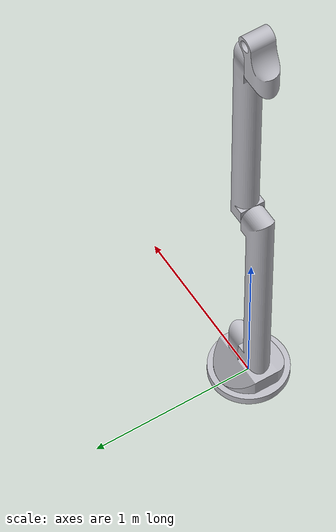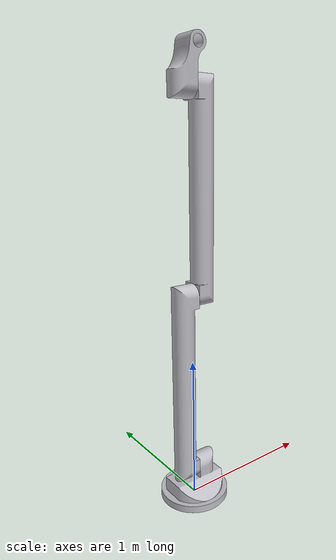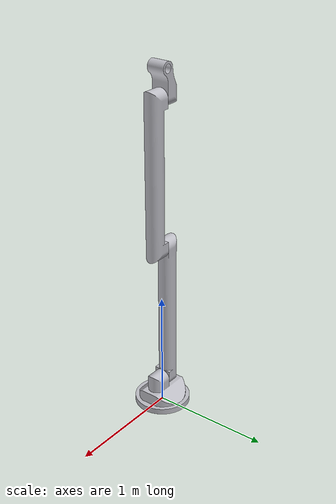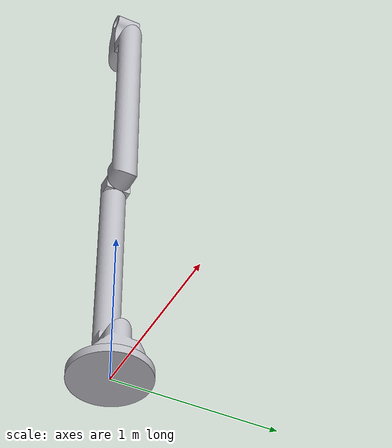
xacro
<?xml version="1.0" ?>
<robot name="e3d_bot" xmlns:xacro="http://www.ros.org/wiki/xacro">

<xacro:include filename="$(find e3d_bot_description)/urdf/e3d_bot.trans" />
<xacro:include filename="$(find e3d_bot_description)/urdf/e3d_bot.gazebo" />
<link name="base_link">
  <inertial>
    <origin xyz="1.0065046946341601e-16 3.355015648780533e-17 0.025000000000000005" rpy="0 0 0"/>
    <mass value="68.09657331058979"/>
    <inertia ixx="0.954345" iyy="0.954345" izz="1.880317" ixy="0.0" iyz="0.0" ixz="0.0"/>
  </inertial>
  <visual>
    <origin xyz="0 0 0" rpy="0 0 0"/>
    <geometry>
      <mesh filename="file://$(find e3d_bot_description)/meshes/base_link.stl" scale="0.001 0.001 0.001"/>
    </geometry>
  </visual>
  <collision>
    <origin xyz="0 0 0" rpy="0 0 0"/>
    <geometry>
      <mesh filename="file://$(find e3d_bot_description)/meshes/base_link.stl" scale="0.001 0.001 0.001"/>
    </geometry>
  </collision>
</link>

<link name="turnTable_1">
  <inertial>
    <origin xyz="0.015394292608733942 -6.217248937900877e-17 0.07182246463634923" rpy="0 0 0"/>
    <mass value="95.92340611318656"/>
    <inertia ixx="0.876124" iyy="1.240281" izz="1.409951" ixy="-0.0" iyz="-0.0" ixz="-0.144355"/>
  </inertial>
  <visual>
    <origin xyz="-0.0 -0.0 -0.05" rpy="0 0 0"/>
    <geometry>
      <mesh filename="file://$(find e3d_bot_description)/meshes/turnTable_1.stl" scale="0.001 0.001 0.001"/>
    </geometry>
  </visual>
  <collision>
    <origin xyz="-0.0 -0.0 -0.05" rpy="0 0 0"/>
    <geometry>
      <mesh filename="file://$(find e3d_bot_description)/meshes/turnTable_1.stl" scale="0.001 0.001 0.001"/>
    </geometry>
  </collision>
</link>

<link name="l1_1">
  <inertial>
    <origin xyz="-0.0736539542138444 1.5987211554602254e-16 0.6249999999999996" rpy="0 0 0"/>
    <mass value="195.479313262593"/>
    <inertia ixx="32.16085" iyy="32.168685" izz="0.565071" ixy="-0.0" iyz="-0.0" ixz="0.0"/>
  </inertial>
  <visual>
    <origin xyz="-0.0 0.0 -0.225" rpy="0 0 0"/>
    <geometry>
      <mesh filename="file://$(find e3d_bot_description)/meshes/l1_1.stl" scale="0.001 0.001 0.001"/>
    </geometry>
  </visual>
  <collision>
    <origin xyz="-0.0 0.0 -0.225" rpy="0 0 0"/>
    <geometry>
      <mesh filename="file://$(find e3d_bot_description)/meshes/l1_1.stl" scale="0.001 0.001 0.001"/>
    </geometry>
  </collision>
</link>

<link name="l2_1">
  <inertial>
    <origin xyz="0.0736539542138442 5.062616992290713e-16 0.6250000000000009" rpy="0 0 0"/>
    <mass value="195.47931326259283"/>
    <inertia ixx="32.16085" iyy="32.168685" izz="0.565071" ixy="-0.0" iyz="-0.0" ixz="0.0"/>
  </inertial>
  <visual>
    <origin xyz="0.0 -0.0 -1.475" rpy="0 0 0"/>
    <geometry>
      <mesh filename="file://$(find e3d_bot_description)/meshes/l2_1.stl" scale="0.001 0.001 0.001"/>
    </geometry>
  </visual>
  <collision>
    <origin xyz="0.0 -0.0 -1.475" rpy="0 0 0"/>
    <geometry>
      <mesh filename="file://$(find e3d_bot_description)/meshes/l2_1.stl" scale="0.001 0.001 0.001"/>
    </geometry>
  </collision>
</link>

<link name="endeffector_1">
  <inertial>
    <origin xyz="-0.05064014766169734 3.858456326888415e-08 0.07741885791303327" rpy="0 0 0"/>
    <mass value="39.81497734362995"/>
    <inertia ixx="0.40007" iyy="0.412181" izz="0.143564" ixy="0.0" iyz="0.0" ixz="-0.084966"/>
  </inertial>
  <visual>
    <origin xyz="0.0 -0.0 -2.725" rpy="0 0 0"/>
    <geometry>
      <mesh filename="file://$(find e3d_bot_description)/meshes/endeffector_1.stl" scale="0.001 0.001 0.001"/>
    </geometry>
  </visual>
  <collision>
    <origin xyz="0.0 -0.0 -2.725" rpy="0 0 0"/>
    <geometry>
      <mesh filename="file://$(find e3d_bot_description)/meshes/endeffector_1.stl" scale="0.001 0.001 0.001"/>
    </geometry>
  </collision>
</link>

<joint name="turnTable_to_base" type="continuous">
  <origin xyz="0.0 0.0 0.05" rpy="0 0 0"/>
  <parent link="base_link"/>
  <child link="turnTable_1"/>
  <axis xyz="0.0 0.0 1.0"/>
</joint>

<joint name="l1_to_base" type="continuous">
  <origin xyz="0.0 -0.0 0.175" rpy="0 0 0"/>
  <parent link="turnTable_1"/>
  <child link="l1_1"/>
  <axis xyz="-1.0 0.0 0.0"/>
</joint>

<joint name="l2_to_l1" type="continuous">
  <origin xyz="-0.0 0.0 1.25" rpy="0 0 0"/>
  <parent link="l1_1"/>
  <child link="l2_1"/>
  <axis xyz="1.0 0.0 0.0"/>
</joint>

<joint name="endeffector_to_l2" type="continuous">
  <origin xyz="0.0 0.0 1.25" rpy="0 0 0"/>
  <parent link="l2_1"/>
  <child link="endeffector_1"/>
  <axis xyz="-1.0 0.0 0.0"/>
</joint>

</robot>

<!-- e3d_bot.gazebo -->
<robot name="e3d_bot" xmlns:xacro="http://www.ros.org/wiki/xacro" >

<xacro:property name="body_color" value="Gazebo/Silver" />

<gazebo>
  <plugin name="control" filename="libgazebo_ros_control.so"/>
</gazebo>
<gazebo reference="base_link">
  <material>${body_color}</material>
  <mu1>0.2</mu1>
  <mu2>0.2</mu2>
  <self_collide>true</self_collide>
  <gravity>true</gravity>
</gazebo>

<gazebo reference="turnTable_1">
  <material>${body_color}</material>
  <mu1>0.2</mu1>
  <mu2>0.2</mu2>
  <self_collide>true</self_collide>
</gazebo>

<gazebo reference="l1_1">
  <material>${body_color}</material>
  <mu1>0.2</mu1>
  <mu2>0.2</mu2>
  <self_collide>true</self_collide>
</gazebo>

<gazebo reference="l2_1">
  <material>${body_color}</material>
  <mu1>0.2</mu1>
  <mu2>0.2</mu2>
  <self_collide>true</self_collide>
</gazebo>

<gazebo reference="endeffector_1">
  <material>${body_color}</material>
  <mu1>0.2</mu1>
  <mu2>0.2</mu2>
  <self_collide>true</self_collide>
</gazebo>

</robot>
